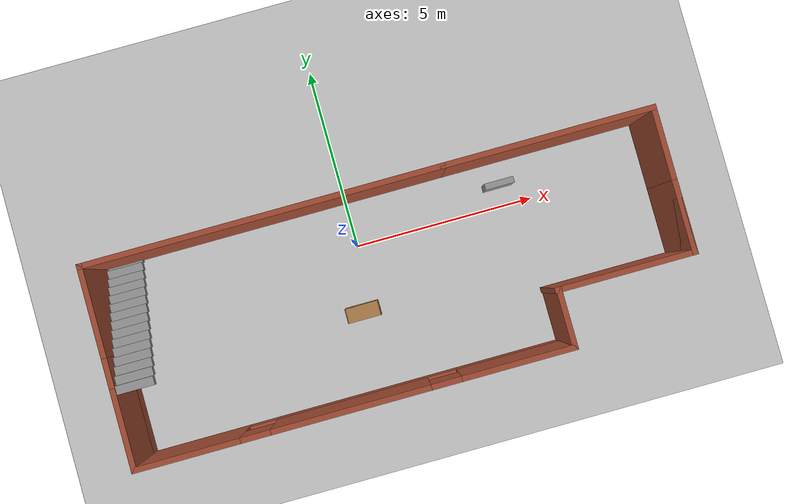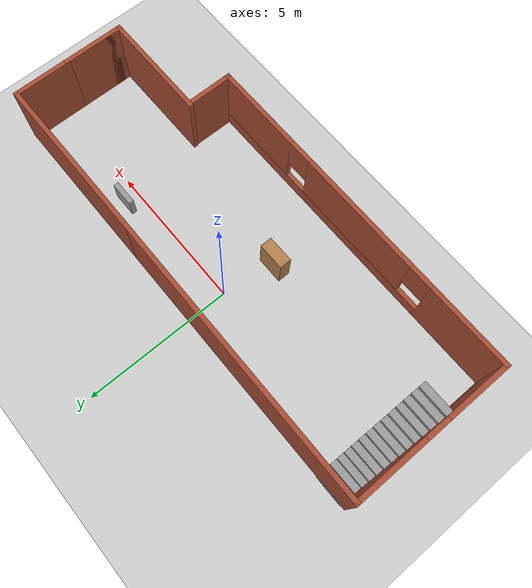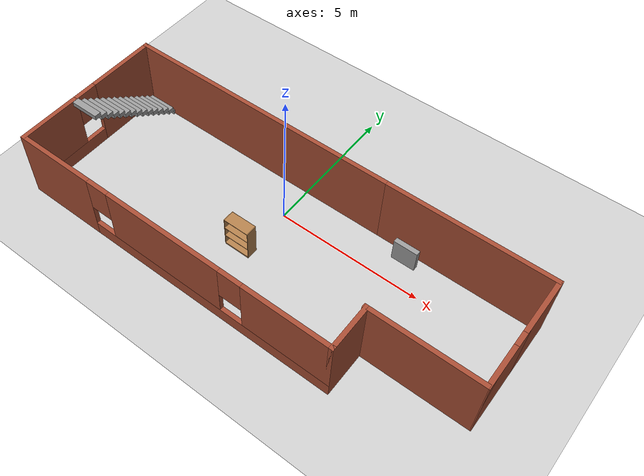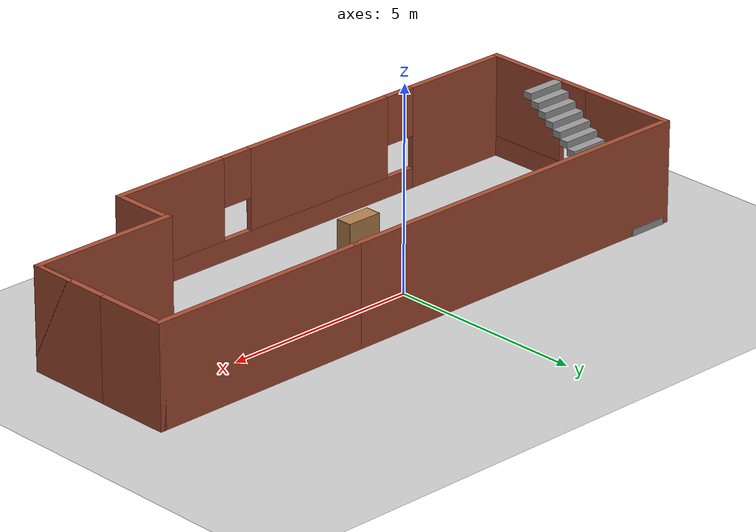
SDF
<sdf version="1.7">
 <world name="default">
  <light name="sun" type="directional">
   <pose>0 0 10 0 -0 0</pose>
   <diffuse>0.8 0.8 0.8 1</diffuse>
   <specular>0.2 0.2 0.2 1</specular>
   <attenuation>
    <range>1000</range>
    <constant>0.9</constant>
    <linear>0.01</linear>
    <quadratic>0.001</quadratic>
   </attenuation>
   <direction>-0.5 0.1 -0.9</direction>
   <spot><inner_angle>0</inner_angle><outer_angle>0</outer_angle><falloff>0</falloff></spot>
  </light>
  <model name="ground_plane">
   <static>1</static>
   <link name="link">
    <collision name="collision">
     <geometry><plane><normal>0 0 1</normal><size>100 100</size></plane></geometry>
     <surface><friction><ode><mu>100</mu><mu2>50</mu2></ode></friction></surface>
    </collision>
    <visual name="visual">
     <cast_shadows>0</cast_shadows>
     <geometry><plane><normal>0 0 1</normal><size>100 100</size></plane></geometry>
     <material>
      <script><uri>file://media/materials/scripts/gazebo.material</uri><name>Gazebo/Grey</name></script>
     </material>
    </visual>
   </link>
  </model>
  <gravity>0 0 -9.8</gravity>
  <magnetic_field>6e-06 2.3e-05 -4.2e-05</magnetic_field>
  <atmosphere type="adiabatic"/>
  <physics type="ode">
   <max_step_size>0.001</max_step_size>
   <real_time_factor>1</real_time_factor>
   <real_time_update_rate>1000</real_time_update_rate>
  </physics>
  <scene><ambient>0.4 0.4 0.4 1</ambient><background>0.7 0.7 0.7 1</background><shadows>1</shadows></scene>
  <audio><device>default</device></audio>
  <spherical_coordinates>
   <surface_model>EARTH_WGS84</surface_model>
   <latitude_deg>0</latitude_deg>
   <longitude_deg>0</longitude_deg>
   <elevation>0</elevation>
   <heading_deg>0</heading_deg>
  </spherical_coordinates>
  <model name="bookshelf">
   <static>1</static>
   <link name="link">
    <inertial><mass>1</mass></inertial>
    <collision name="back">
     <pose>0 0.005 0.6 0 -0 0</pose>
     <geometry><box><size>0.9 0.01 1.2</size></box></geometry>
    </collision>
    <visual name="visual1">
     <pose>0 0.005 0.6 0 -0 0</pose>
     <geometry><box><size>0.9 0.01 1.2</size></box></geometry>
     <material>
      <script><uri>file://media/materials/scripts/gazebo.material</uri><name>Gazebo/Wood</name></script>
     </material>
    </visual>
    <collision name="left_side">
     <pose>0.45 -0.195 0.6 0 -0 0</pose>
     <geometry><box><size>0.02 0.4 1.2</size></box></geometry>
    </collision>
    <visual name="visual2">
     <pose>0.45 -0.195 0.6 0 -0 0</pose>
     <geometry><box><size>0.02 0.4 1.2</size></box></geometry>
     <material>
      <script><uri>file://media/materials/scripts/gazebo.material</uri><name>Gazebo/Wood</name></script>
     </material>
    </visual>
    <collision name="right_side">
     <pose>-0.45 -0.195 0.6 0 -0 0</pose>
     <geometry><box><size>0.02 0.4 1.2</size></box></geometry>
    </collision>
    <visual name="visual3">
     <pose>-0.45 -0.195 0.6 0 -0 0</pose>
     <geometry><box><size>0.02 0.4 1.2</size></box></geometry>
     <material>
      <script><uri>file://media/materials/scripts/gazebo.material</uri><name>Gazebo/Wood</name></script>
     </material>
    </visual>
    <collision name="bottom">
     <pose>0 -0.195 0.03 0 -0 0</pose>
     <geometry><box><size>0.88 0.4 0.06</size></box></geometry>
    </collision>
    <visual name="visual4">
     <pose>0 -0.195 0.03 0 -0 0</pose>
     <geometry><box><size>0.88 0.4 0.06</size></box></geometry>
     <material>
      <script><uri>file://media/materials/scripts/gazebo.material</uri><name>Gazebo/Wood</name></script>
     </material>
    </visual>
    <collision name="top">
     <pose>0 -0.195 1.19 0 -0 0</pose>
     <geometry><box><size>0.88 0.4 0.02</size></box></geometry>
    </collision>
    <visual name="visual5">
     <pose>0 -0.195 1.19 0 -0 0</pose>
     <geometry><box><size>0.88 0.4 0.02</size></box></geometry>
     <material>
      <script><uri>file://media/materials/scripts/gazebo.material</uri><name>Gazebo/Wood</name></script>
     </material>
    </visual>
    <collision name="low_shelf">
     <pose>0 -0.195 0.43 0 -0 0</pose>
     <geometry><box><size>0.88 0.4 0.02</size></box></geometry>
    </collision>
    <visual name="visual6">
     <pose>0 -0.195 0.43 0 -0 0</pose>
     <geometry><box><size>0.88 0.4 0.02</size></box></geometry>
     <material>
      <script><uri>file://media/materials/scripts/gazebo.material</uri><name>Gazebo/Wood</name></script>
     </material>
    </visual>
    <collision name="high_shelf">
     <pose>0 -0.195 0.8 0 -0 0</pose>
     <geometry><box><size>0.88 0.4 0.02</size></box></geometry>
    </collision>
    <visual name="visual7">
     <pose>0 -0.195 0.8 0 -0 0</pose>
     <geometry><box><size>0.88 0.4 0.02</size></box></geometry>
     <material>
      <script><uri>file://media/materials/scripts/gazebo.material</uri><name>Gazebo/Wood</name></script>
     </material>
    </visual>
   </link>
   <pose>-0.306557 -1.57599 0 0 -0 0</pose>
  </model>
  <model name="test">
   <pose>0.684515 -1.05832 0 0 -0 0</pose>
   <link name="Stairs_0">
    <visual name="Stairs_0_Visual_0">
     <pose>-7.01755 2.34229 0.083333 0 -0 0</pose>
     <geometry><box><size>1 0.233333 0.166667</size></box></geometry>
     <material>
      <script><uri>file://media/materials/scripts/gazebo.material</uri><name>Gazebo/Grey</name></script>
      <ambient>1 1 1 1</ambient>
     </material>
     <meta><layer>0</layer></meta>
    </visual>
    <collision name="Stairs_0_Collision_0">
     <geometry><box><size>1 0.233333 0.166667</size></box></geometry>
     <pose>-7.01755 2.34229 0.083333 0 -0 0</pose>
    </collision>
    <visual name="Stairs_0_Visual_1">
     <pose>-7.01755 2.10895 0.25 0 -0 0</pose>
     <geometry><box><size>1 0.233333 0.166667</size></box></geometry>
     <material>
      <script><uri>file://media/materials/scripts/gazebo.material</uri><name>Gazebo/Grey</name></script>
      <ambient>1 1 1 1</ambient>
     </material>
     <meta><layer>0</layer></meta>
    </visual>
    <collision name="Stairs_0_Collision_1">
     <geometry><box><size>1 0.233333 0.166667</size></box></geometry>
     <pose>-7.01755 2.10895 0.25 0 -0 0</pose>
    </collision>
    <visual name="Stairs_0_Visual_2">
     <pose>-7.01755 1.87562 0.416667 0 -0 0</pose>
     <geometry><box><size>1 0.233333 0.166667</size></box></geometry>
     <material>
      <script><uri>file://media/materials/scripts/gazebo.material</uri><name>Gazebo/Grey</name></script>
      <ambient>1 1 1 1</ambient>
     </material>
     <meta><layer>0</layer></meta>
    </visual>
    <collision name="Stairs_0_Collision_2">
     <geometry><box><size>1 0.233333 0.166667</size></box></geometry>
     <pose>-7.01755 1.87562 0.416667 0 -0 0</pose>
    </collision>
    <visual name="Stairs_0_Visual_3">
     <pose>-7.01755 1.64229 0.583333 0 -0 0</pose>
     <geometry><box><size>1 0.233333 0.166667</size></box></geometry>
     <material>
      <script><uri>file://media/materials/scripts/gazebo.material</uri><name>Gazebo/Grey</name></script>
      <ambient>1 1 1 1</ambient>
     </material>
     <meta><layer>0</layer></meta>
    </visual>
    <collision name="Stairs_0_Collision_3">
     <geometry><box><size>1 0.233333 0.166667</size></box></geometry>
     <pose>-7.01755 1.64229 0.583333 0 -0 0</pose>
    </collision>
    <visual name="Stairs_0_Visual_4">
     <pose>-7.01755 1.40895 0.75 0 -0 0</pose>
     <geometry><box><size>1 0.233333 0.166667</size></box></geometry>
     <material>
      <script><uri>file://media/materials/scripts/gazebo.material</uri><name>Gazebo/Grey</name></script>
      <ambient>1 1 1 1</ambient>
     </material>
     <meta><layer>0</layer></meta>
    </visual>
    <collision name="Stairs_0_Collision_4">
     <geometry><box><size>1 0.233333 0.166667</size></box></geometry>
     <pose>-7.01755 1.40895 0.75 0 -0 0</pose>
    </collision>
    <visual name="Stairs_0_Visual_5">
     <pose>-7.01755 1.17562 0.916667 0 -0 0</pose>
     <geometry><box><size>1 0.233333 0.166667</size></box></geometry>
     <material>
      <script><uri>file://media/materials/scripts/gazebo.material</uri><name>Gazebo/Grey</name></script>
      <ambient>1 1 1 1</ambient>
     </material>
     <meta><layer>0</layer></meta>
    </visual>
    <collision name="Stairs_0_Collision_5">
     <geometry><box><size>1 0.233333 0.166667</size></box></geometry>
     <pose>-7.01755 1.17562 0.916667 0 -0 0</pose>
    </collision>
    <visual name="Stairs_0_Visual_6">
     <pose>-7.01755 0.942286 1.08333 0 -0 0</pose>
     <geometry><box><size>1 0.233333 0.166667</size></box></geometry>
     <material>
      <script><uri>file://media/materials/scripts/gazebo.material</uri><name>Gazebo/Grey</name></script>
      <ambient>1 1 1 1</ambient>
     </material>
     <meta><layer>0</layer></meta>
    </visual>
    <collision name="Stairs_0_Collision_6">
     <geometry><box><size>1 0.233333 0.166667</size></box></geometry>
     <pose>-7.01755 0.942286 1.08333 0 -0 0</pose>
    </collision>
    <visual name="Stairs_0_Visual_7">
     <pose>-7.01755 0.708953 1.25 0 -0 0</pose>
     <geometry><box><size>1 0.233333 0.166667</size></box></geometry>
     <material>
      <script><uri>file://media/materials/scripts/gazebo.material</uri><name>Gazebo/Grey</name></script>
      <ambient>1 1 1 1</ambient>
     </material>
     <meta><layer>0</layer></meta>
    </visual>
    <collision name="Stairs_0_Collision_7">
     <geometry><box><size>1 0.233333 0.166667</size></box></geometry>
     <pose>-7.01755 0.708953 1.25 0 -0 0</pose>
    </collision>
    <visual name="Stairs_0_Visual_8">
     <pose>-7.01755 0.47562 1.41667 0 -0 0</pose>
     <geometry><box><size>1 0.233333 0.166667</size></box></geometry>
     <material>
      <script><uri>file://media/materials/scripts/gazebo.material</uri><name>Gazebo/Grey</name></script>
      <ambient>1 1 1 1</ambient>
     </material>
     <meta><layer>0</layer></meta>
    </visual>
    <collision name="Stairs_0_Collision_8">
     <geometry><box><size>1 0.233333 0.166667</size></box></geometry>
     <pose>-7.01755 0.47562 1.41667 0 -0 0</pose>
    </collision>
    <visual name="Stairs_0_Visual_9">
     <pose>-7.01755 0.242286 1.58333 0 -0 0</pose>
     <geometry><box><size>1 0.233333 0.166667</size></box></geometry>
     <material>
      <script><uri>file://media/materials/scripts/gazebo.material</uri><name>Gazebo/Grey</name></script>
      <ambient>1 1 1 1</ambient>
     </material>
     <meta><layer>0</layer></meta>
    </visual>
    <collision name="Stairs_0_Collision_9">
     <geometry><box><size>1 0.233333 0.166667</size></box></geometry>
     <pose>-7.01755 0.242286 1.58333 0 -0 0</pose>
    </collision>
    <visual name="Stairs_0_Visual_10">
     <pose>-7.01755 0.008953 1.75 0 -0 0</pose>
     <geometry><box><size>1 0.233333 0.166667</size></box></geometry>
     <material>
      <script><uri>file://media/materials/scripts/gazebo.material</uri><name>Gazebo/Grey</name></script>
      <ambient>1 1 1 1</ambient>
     </material>
     <meta><layer>0</layer></meta>
    </visual>
    <collision name="Stairs_0_Collision_10">
     <geometry><box><size>1 0.233333 0.166667</size></box></geometry>
     <pose>-7.01755 0.008953 1.75 0 -0 0</pose>
    </collision>
    <visual name="Stairs_0_Visual_11">
     <pose>-7.01755 -0.22438 1.91667 0 -0 0</pose>
     <geometry><box><size>1 0.233333 0.166667</size></box></geometry>
     <material>
      <script><uri>file://media/materials/scripts/gazebo.material</uri><name>Gazebo/Grey</name></script>
      <ambient>1 1 1 1</ambient>
     </material>
     <meta><layer>0</layer></meta>
    </visual>
    <collision name="Stairs_0_Collision_11">
     <geometry><box><size>1 0.233333 0.166667</size></box></geometry>
     <pose>-7.01755 -0.22438 1.91667 0 -0 0</pose>
    </collision>
    <visual name="Stairs_0_Visual_12">
     <pose>-7.01755 -0.457714 2.08333 0 -0 0</pose>
     <geometry><box><size>1 0.233333 0.166667</size></box></geometry>
     <material>
      <script><uri>file://media/materials/scripts/gazebo.material</uri><name>Gazebo/Grey</name></script>
      <ambient>1 1 1 1</ambient>
     </material>
     <meta><layer>0</layer></meta>
    </visual>
    <collision name="Stairs_0_Collision_12">
     <geometry><box><size>1 0.233333 0.166667</size></box></geometry>
     <pose>-7.01755 -0.457714 2.08333 0 -0 0</pose>
    </collision>
    <visual name="Stairs_0_Visual_13">
     <pose>-7.01755 -0.691047 2.25 0 -0 0</pose>
     <geometry><box><size>1 0.233333 0.166667</size></box></geometry>
     <material>
      <script><uri>file://media/materials/scripts/gazebo.material</uri><name>Gazebo/Grey</name></script>
      <ambient>1 1 1 1</ambient>
     </material>
     <meta><layer>0</layer></meta>
    </visual>
    <collision name="Stairs_0_Collision_13">
     <geometry><box><size>1 0.233333 0.166667</size></box></geometry>
     <pose>-7.01755 -0.691047 2.25 0 -0 0</pose>
    </collision>
    <visual name="Stairs_0_Visual_14">
     <pose>-7.01755 -0.92438 2.41667 0 -0 0</pose>
     <geometry><box><size>1 0.233333 0.166667</size></box></geometry>
     <material>
      <script><uri>file://media/materials/scripts/gazebo.material</uri><name>Gazebo/Grey</name></script>
      <ambient>1 1 1 1</ambient>
     </material>
     <meta><layer>0</layer></meta>
    </visual>
    <collision name="Stairs_0_Collision_14">
     <geometry><box><size>1 0.233333 0.166667</size></box></geometry>
     <pose>-7.01755 -0.92438 2.41667 0 -0 0</pose>
    </collision>
   </link>
   <link name="Wall_1">
    <collision name="Wall_1_Collision">
     <geometry><box><size>5.75 0.15 2.5</size></box></geometry>
     <pose>0 0 1.25 0 -0 0</pose>
    </collision>
    <visual name="Wall_1_Visual">
     <pose>0 0 1.25 0 -0 0</pose>
     <geometry><box><size>5.75 0.15 2.5</size></box></geometry>
     <material>
      <script><uri>file://media/materials/scripts/gazebo.material</uri><name>Gazebo/Bricks</name></script>
      <ambient>1 1 1 1</ambient>
     </material>
     <meta><layer>0</layer></meta>
    </visual>
    <pose>4.8 2.3625 0 0 -0 0</pose>
   </link>
   <link name="Wall_10">
    <pose>-7.6 -0.3125 0 0 -0 -1.5708</pose>
    <visual name="Wall_10_Visual_0">
     <pose>-1.50528 0 1.25 0 -0 0</pose>
     <geometry><box><size>2.48945 0.15 2.5</size></box></geometry>
     <material>
      <script><uri>file://media/materials/scripts/gazebo.material</uri><name>Gazebo/Bricks</name></script>
      <ambient>1 1 1 1</ambient>
     </material>
     <meta><layer>0</layer></meta>
    </visual>
    <collision name="Wall_10_Collision_0">
     <geometry><box><size>2.48945 0.15 2.5</size></box></geometry>
     <pose>-1.50528 0 1.25 0 -0 0</pose>
    </collision>
    <visual name="Wall_10_Visual_1">
     <pose>1.24472 0 0.25 0 -0 0</pose>
     <geometry><box><size>3.01055 0.15 0.5</size></box></geometry>
     <material>
      <script><uri>file://media/materials/scripts/gazebo.material</uri><name>Gazebo/Bricks</name></script>
      <ambient>1 1 1 1</ambient>
     </material>
     <meta><layer>0</layer></meta>
    </visual>
    <collision name="Wall_10_Collision_1">
     <geometry><box><size>3.01055 0.15 0.5</size></box></geometry>
     <pose>1.24472 0 0.25 0 -0 0</pose>
    </collision>
    <visual name="Wall_10_Visual_2">
     <pose>1.64472 0 1.5 0 -0 0</pose>
     <geometry><box><size>2.21055 0.15 2</size></box></geometry>
     <material>
      <script><uri>file://media/materials/scripts/gazebo.material</uri><name>Gazebo/Bricks</name></script>
      <ambient>1 1 1 1</ambient>
     </material>
     <meta><layer>0</layer></meta>
    </visual>
    <collision name="Wall_10_Collision_2">
     <geometry><box><size>2.21055 0.15 2</size></box></geometry>
     <pose>1.64472 0 1.5 0 -0 0</pose>
    </collision>
    <visual name="Wall_10_Visual_3">
     <pose>0.139446 0 1.9 0 -0 0</pose>
     <geometry><box><size>0.8 0.15 1.2</size></box></geometry>
     <material>
      <script><uri>file://media/materials/scripts/gazebo.material</uri><name>Gazebo/Bricks</name></script>
      <ambient>1 1 1 1</ambient>
     </material>
     <meta><layer>0</layer></meta>
    </visual>
    <collision name="Wall_10_Collision_3">
     <geometry><box><size>0.8 0.15 1.2</size></box></geometry>
     <pose>0.139446 0 1.9 0 -0 0</pose>
    </collision>
   </link>
   <link name="Wall_11">
    <pose>-1.8 -2.9875 0 0 -0 0</pose>
    <visual name="Wall_11_Visual_0">
     <pose>-4.44466 0 1.25 0 -0 0</pose>
     <geometry><box><size>2.86068 0.15 2.5</size></box></geometry>
     <material>
      <script><uri>file://media/materials/scripts/gazebo.material</uri><name>Gazebo/Bricks</name></script>
      <ambient>1 1 1 1</ambient>
     </material>
     <meta><layer>0</layer></meta>
    </visual>
    <collision name="Wall_11_Collision_0">
     <geometry><box><size>2.86068 0.15 2.5</size></box></geometry>
     <pose>-4.44466 0 1.25 0 -0 0</pose>
    </collision>
    <visual name="Wall_11_Visual_1">
     <pose>1.43034 0 0.25 0 -0 0</pose>
     <geometry><box><size>8.88932 0.15 0.5</size></box></geometry>
     <material>
      <script><uri>file://media/materials/scripts/gazebo.material</uri><name>Gazebo/Bricks</name></script>
      <ambient>1 1 1 1</ambient>
     </material>
     <meta><layer>0</layer></meta>
    </visual>
    <collision name="Wall_11_Collision_1">
     <geometry><box><size>8.88932 0.15 0.5</size></box></geometry>
     <pose>1.43034 0 0.25 0 -0 0</pose>
    </collision>
    <visual name="Wall_11_Visual_2">
     <pose>-0.099043 0 1.5 0 -0 0</pose>
     <geometry><box><size>4.23056 0.15 2</size></box></geometry>
     <material>
      <script><uri>file://media/materials/scripts/gazebo.material</uri><name>Gazebo/Bricks</name></script>
      <ambient>1 1 1 1</ambient>
     </material>
     <meta><layer>0</layer></meta>
    </visual>
    <collision name="Wall_11_Collision_2">
     <geometry><box><size>4.23056 0.15 2</size></box></geometry>
     <pose>-0.099043 0 1.5 0 -0 0</pose>
    </collision>
    <visual name="Wall_11_Visual_3">
     <pose>4.34562 0 1.5 0 -0 0</pose>
     <geometry><box><size>3.05876 0.15 2</size></box></geometry>
     <material>
      <script><uri>file://media/materials/scripts/gazebo.material</uri><name>Gazebo/Bricks</name></script>
      <ambient>1 1 1 1</ambient>
     </material>
     <meta><layer>0</layer></meta>
    </visual>
    <collision name="Wall_11_Collision_3">
     <geometry><box><size>3.05876 0.15 2</size></box></geometry>
     <pose>4.34562 0 1.5 0 -0 0</pose>
    </collision>
    <visual name="Wall_11_Visual_4">
     <pose>-2.61433 0 1.9 0 -0 0</pose>
     <geometry><box><size>0.8 0.15 1.2</size></box></geometry>
     <material>
      <script><uri>file://media/materials/scripts/gazebo.material</uri><name>Gazebo/Bricks</name></script>
      <ambient>1 1 1 1</ambient>
     </material>
     <meta><layer>0</layer></meta>
    </visual>
    <collision name="Wall_11_Collision_4">
     <geometry><box><size>0.8 0.15 1.2</size></box></geometry>
     <pose>-2.61433 0 1.9 0 -0 0</pose>
    </collision>
    <visual name="Wall_11_Visual_5">
     <pose>2.41624 0 1.9 0 -0 0</pose>
     <geometry><box><size>0.8 0.15 1.2</size></box></geometry>
     <material>
      <script><uri>file://media/materials/scripts/gazebo.material</uri><name>Gazebo/Bricks</name></script>
      <ambient>1 1 1 1</ambient>
     </material>
     <meta><layer>0</layer></meta>
    </visual>
    <collision name="Wall_11_Collision_5">
     <geometry><box><size>0.8 0.15 1.2</size></box></geometry>
     <pose>2.41624 0 1.9 0 -0 0</pose>
    </collision>
   </link>
   <link name="Wall_12">
    <collision name="Wall_12_Collision">
     <geometry><box><size>1.66288 0.15 2.5</size></box></geometry>
     <pose>0 0 1.25 0 -0 0</pose>
    </collision>
    <visual name="Wall_12_Visual">
     <pose>0 0 1.25 0 -0 0</pose>
     <geometry><box><size>1.66288 0.15 2.5</size></box></geometry>
     <material>
      <script><uri>file://media/materials/scripts/gazebo.material</uri><name>Gazebo/Bricks</name></script>
      <ambient>1 1 1 1</ambient>
     </material>
     <meta><layer>0</layer></meta>
    </visual>
    <pose>4 -2.23106 0 0 -0 1.5708</pose>
   </link>
   <link name="Wall_2">
    <collision name="Wall_2_Collision">
     <geometry><box><size>2 0.15 2.5</size></box></geometry>
     <pose>0 0 1.25 0 -0 0</pose>
    </collision>
    <visual name="Wall_2_Visual">
     <pose>0 0 1.25 0 -0 0</pose>
     <geometry><box><size>2 0.15 2.5</size></box></geometry>
     <material>
      <script><uri>file://media/materials/scripts/gazebo.material</uri><name>Gazebo/Bricks</name></script>
      <ambient>1 1 1 1</ambient>
     </material>
     <meta><layer>0</layer></meta>
    </visual>
    <pose>7.6 1.4375 0 0 -0 -1.5708</pose>
   </link>
   <link name="Wall_5">
    <pose>7.6 -0.481058 0 0 -0 -1.5708</pose>
    <visual name="Wall_5_Visual_0">
     <pose>0 0 1.25 0 -0 0</pose>
     <geometry><box><size>2.13712 0.15 2.5</size></box></geometry>
     <material>
      <script><uri>file://media/materials/scripts/gazebo.material</uri><name>Gazebo/Bricks</name></script>
      <ambient>1 1 1 1</ambient>
     </material>
     <meta><layer>0</layer></meta>
    </visual>
    <collision name="Wall_5_Collision_0">
     <geometry><box><size>2.13712 0.15 2.5</size></box></geometry>
     <pose>0 0 1.25 0 -0 0</pose>
    </collision>
    <visual name="Wall_5_Visual_1">
     <pose>0.316633 0 1.25 0 -0 0</pose>
     <geometry><box><size>1.50385 0.15 2.5</size></box></geometry>
     <material>
      <script><uri>file://media/materials/scripts/gazebo.material</uri><name>Gazebo/Bricks</name></script>
      <ambient>1 1 1 1</ambient>
     </material>
     <meta><layer>0</layer></meta>
    </visual>
    <collision name="Wall_5_Collision_1">
     <geometry><box><size>1.50385 0.15 2.5</size></box></geometry>
     <pose>0.316633 0 1.25 0 -0 0</pose>
    </collision>
   </link>
   <link name="Wall_6">
    <collision name="Wall_6_Collision">
     <geometry><box><size>3.75 0.15 2.5</size></box></geometry>
     <pose>0 0 1.25 0 -0 0</pose>
    </collision>
    <visual name="Wall_6_Visual">
     <pose>0 0 1.25 0 -0 0</pose>
     <geometry><box><size>3.75 0.15 2.5</size></box></geometry>
     <material>
      <script><uri>file://media/materials/scripts/gazebo.material</uri><name>Gazebo/Bricks</name></script>
      <ambient>1 1 1 1</ambient>
     </material>
     <meta><layer>0</layer></meta>
    </visual>
    <pose>5.76941 -1.47462 0 0 -0 3.14159</pose>
   </link>
   <link name="Wall_9">
    <collision name="Wall_9_Collision">
     <geometry><box><size>9.75 0.15 2.5</size></box></geometry>
     <pose>0 0 1.25 0 -0 0</pose>
    </collision>
    <visual name="Wall_9_Visual">
     <pose>0 0 1.25 0 -0 0</pose>
     <geometry><box><size>9.75 0.15 2.5</size></box></geometry>
     <material>
      <script><uri>file://media/materials/scripts/gazebo.material</uri><name>Gazebo/Bricks</name></script>
      <ambient>1 1 1 1</ambient>
     </material>
     <meta><layer>0</layer></meta>
    </visual>
    <pose>-2.8 2.3625 0 0 -0 3.14159</pose>
   </link>
   <link name="Window_0">
    <collision name="Window_0_Collision">
     <geometry><box><size>0.8 0.17 0.8</size></box></geometry>
     <pose>0 0 0.4 0 -0 0</pose>
    </collision>
    <visual name="Window_0_Visual">
     <pose>0 0 0.4 0 -0 0</pose>
     <geometry><box><size>0.8 0.17 0.8</size></box></geometry>
     <material>
      <script><uri>file://media/materials/scripts/gazebo.material</uri><name>Gazebo/Grey</name></script>
     </material>
    </visual>
    <pose>3.43168 1.6235 0.5 0 -0 0</pose>
   </link>
   <static>1</static>
  </model>
 </world>
</sdf>
